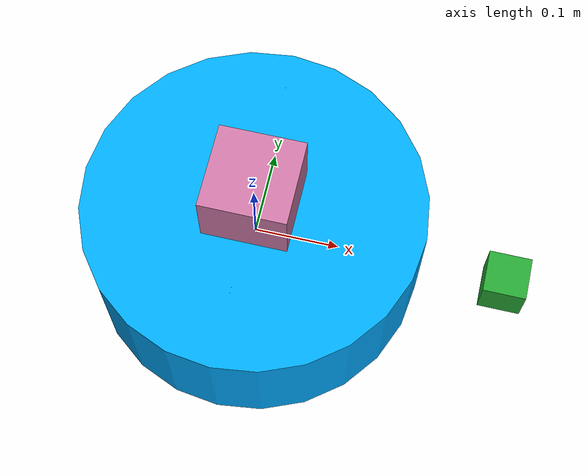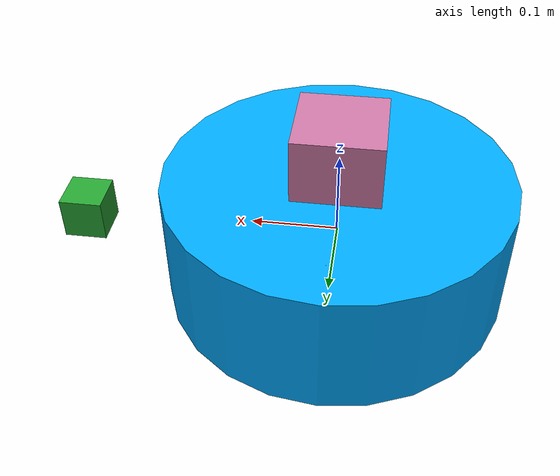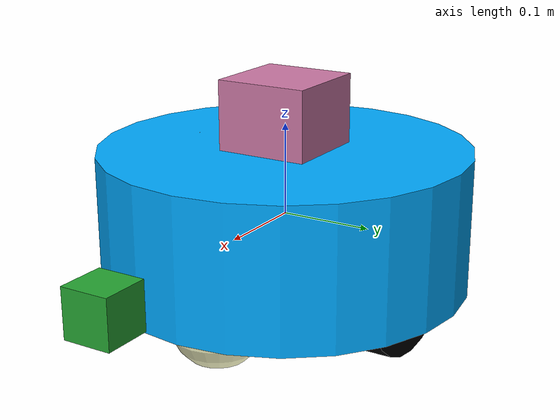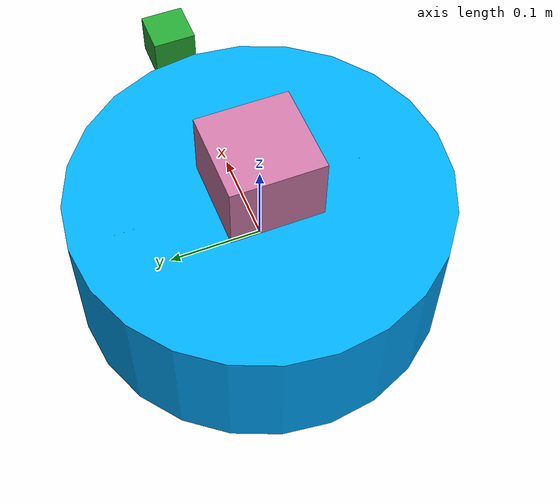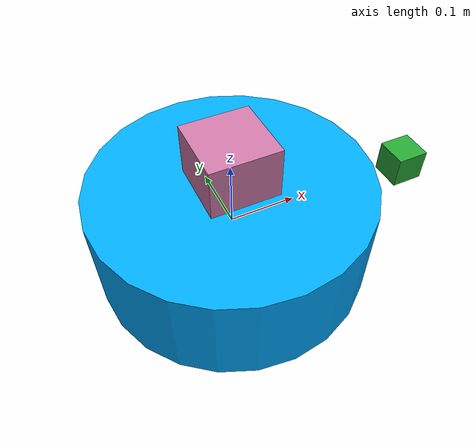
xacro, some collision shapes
<?xml version='1.0'?>

<robot name="map_robot" xmlns:xacro="http://www.ros.org/wiki/xacro">

    <xacro:include filename="$(find map_robot)/urdf/map_robot.gazebo"/>

    <material name="light_blue">
        <color rgba="0 170 255 1"/>
    </material>

    <material name="black">
        <color rgba="0 0 0 1"/>
    </material>

    <material name="slightly_yellow">
        <color rgba="255 255 204 1"/>
    </material>

    <link name="base_footprint"></link>

    <joint name="base_footprint_joint" type="fixed">
        <origin xyz="0 0 0" rpy="0 0 0"/>
        <parent link="base_footprint"/>
        <child link="chassis"/>
    </joint>

    <link name='chassis'>
        <pose>0 0 0.1 0 0 0</pose>

        <inertial>
            <mass value="15.0"/>
            <origin xyz="0.0 0 0" rpy=" 0 0 0"/>
            <inertia ixx="0.1" ixy="0" ixz="0" iyy="0.1" iyz="0" izz="0.1"/>
        </inertial>

        <collision name='collision'>
            <origin xyz="0 0 0" rpy=" 0 0 0"/>
            <geometry>
                <cylinder radius="0.2" length="0.15"/>
            </geometry>
        </collision>

        <visual name='chassis_visual'>
            <origin xyz="0 0 0" rpy=" 0 0 0"/>
            <geometry>
                <cylinder radius="0.2" length="0.15"/>
            </geometry>
            <material name="light_blue"/>
        </visual>

        <collision name='back_caster_collision'>
            <origin xyz="-0.13 0 -0.075" rpy=" 0 0 0"/>
            <geometry>
                <sphere radius="0.0499"/>
            </geometry>
        </collision>

        <visual name='back_caster_visual'>
            <origin xyz="-0.13 0 -0.075" rpy=" 0 0 0"/>
            <geometry>
                <sphere radius="0.05"/>
            </geometry>
            <material name="slightly_yellow"/>
        </visual>

        <collision name='front_caster_collision'>
            <origin xyz="0.13 0 -0.075" rpy=" 0 0 0"/>
            <geometry>
                <sphere radius="0.0499"/>
            </geometry>
        </collision>

        <visual name='front_caster_visual'>
            <origin xyz="0.13 0 -0.075" rpy=" 0 0 0"/>
            <geometry>
                <sphere radius="0.05"/>
            </geometry>
            <material name="slightly_yellow"/>
        </visual>
    </link>

    <joint type="continuous" name="left_wheel_hinge">
        <origin xyz="0 0.13 -0.025" rpy="0 0 0"/>
        <child link="left_wheel"/>
        <parent link="chassis"/>
        <axis xyz="0 1 0" rpy="0 0 0"/>
        <limit effort="10000" velocity="1000"/>
        <dynamics damping="1.0" friction="1.0"/>
    </joint>

    <link name='left_wheel'>
        <inertial>
            <mass value="5.0"/>
            <origin xyz="0.0 0 0" rpy=" 0 1.5707 1.5707"/>
            <inertia ixx="0.1" ixy="0" ixz="0" iyy="0.1" iyz="0" izz="0.1"/>
        </inertial>

        <collision name='left_wheel_collision'>
            <origin xyz="0.0 0 0" rpy=" 0 1.5707 1.5707"/>
            <geometry>
                <cylinder radius="0.1" length="0.05"/>
            </geometry>
        </collision>

        <visual name='left_wheel_visual'>
            <origin xyz="0.0 0 0" rpy=" 0 1.5707 1.5707"/>
            <geometry>
                <cylinder radius="0.1" length="0.05"/>
            </geometry>
            <material name="black"/>
        </visual>
    </link>

    <joint type="continuous" name="right_wheel_hinge">
        <origin xyz="0 -0.13 -0.025" rpy="0 0 0"/>
        <child link="right_wheel"/>
        <parent link="chassis"/>
        <axis xyz="0 1 0" rpy="0 0 0"/>
        <limit effort="10000" velocity="1000"/>
        <dynamics damping="1.0" friction="1.0"/>
    </joint>

    <link name='right_wheel'>
        <inertial>
            <mass value="5.0"/>
            <origin xyz="0.0 0 0" rpy=" 0 1.5707 1.5707"/>
            <inertia ixx="0.1" ixy="0" ixz="0" iyy="0.1" iyz="0" izz="0.1"/>
        </inertial>

        <collision name='right_wheel_collision'>
            <origin xyz="0.0 0 0" rpy=" 0 1.5707 1.5707"/>
            <geometry>
                <cylinder radius="0.1" length="0.05"/>
            </geometry>
        </collision>

        <visual name='right_wheel_visual'>
            <origin xyz="0.0 0 0" rpy=" 0 1.5707 1.5707"/>
            <geometry>
                <cylinder radius="0.1" length="0.05"/>
            </geometry>
            <material name="black"/>
        </visual>
    </link>

    <link name='camera_link'>
        <inertial>
            <mass value="0.1"/>
            <origin xyz="0.0 0 0" rpy="0 0 0"/>
            <inertia ixx="1e-6" ixy="0" ixz="0" iyy="1e-6" iyz="0" izz="1e-6"/>
        </inertial>

        <collision name='camera_collision'>
            <origin xyz="0.0 0 0" rpy="0 0 0"/>
            <geometry>
                <box size=".05 .05 .05"/>
            </geometry>
        </collision>

        <visual name='camera_visual'>
            <origin xyz="0.0 0 0" rpy="0 0 0"/>
            <geometry>
                <box size=".05 .05 .05"/>
            </geometry>
        </visual>
    </link>

    <joint type="fixed" name="camera_joint">
        <origin xyz="0.3 0 0" rpy="0 0 0"/>
        <child link="camera_link"/>
        <parent link="chassis"/>
    </joint>

    <joint name="camera_optical_joint" type="fixed">
        <!-- these values have to be these values otherwise the gazebo camera image won't be aligned properly with the frame it is supposedly originating from -->
        <origin xyz="0 0 0" rpy="${-pi/2} 0 ${-pi/2}"/>
        <parent link="camera_link"/>
        <child link="camera_link_optical"/>
    </joint>

    <link name="camera_link_optical"></link>

    <link name='hokuyo'>
        <inertial>
            <mass value="0.1"/>
            <origin xyz="0.0 0 0" rpy=" 0 0 0"/>
            <inertia ixx="1e-6" ixy="0" ixz="0" iyy="1e-6" iyz="0" izz="1e-6"/>
        </inertial>

        <collision name='hokuyo_collision'>
            <origin xyz="0.0 0 0" rpy=" 0 0 0"/>
            <geometry>
                <box size=".1 .1 .1"/>
            </geometry>
        </collision>

        <visual name='hokuyo_visual'>
            <origin xyz="0.0 0 0" rpy=" 0 0 0"/>
            <geometry>
                <mesh filename="package://map_robot/meshes/hokuyo.dae"/>
            </geometry>
        </visual>
    </link>

    <joint type="fixed" name="hokuyo_joint">
        <origin xyz="0 0 .1" rpy="0 0 0"/>
        <child link="hokuyo"/>
        <parent link="chassis"/>
    </joint>

</robot>
